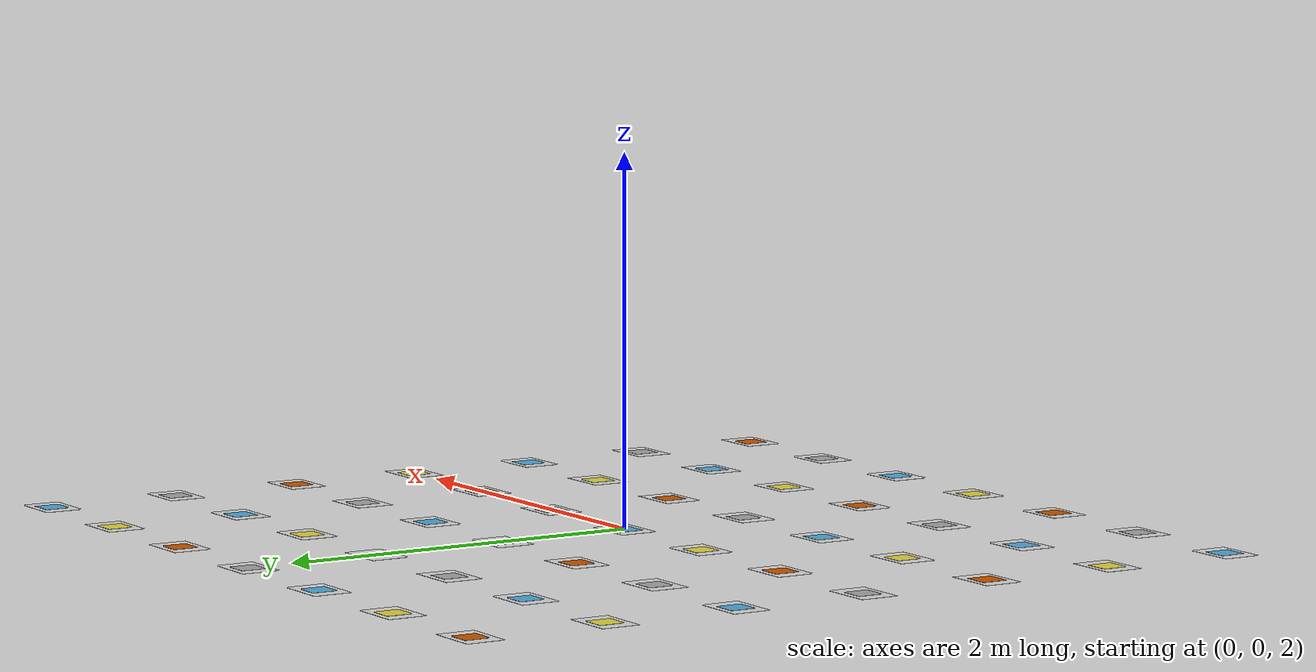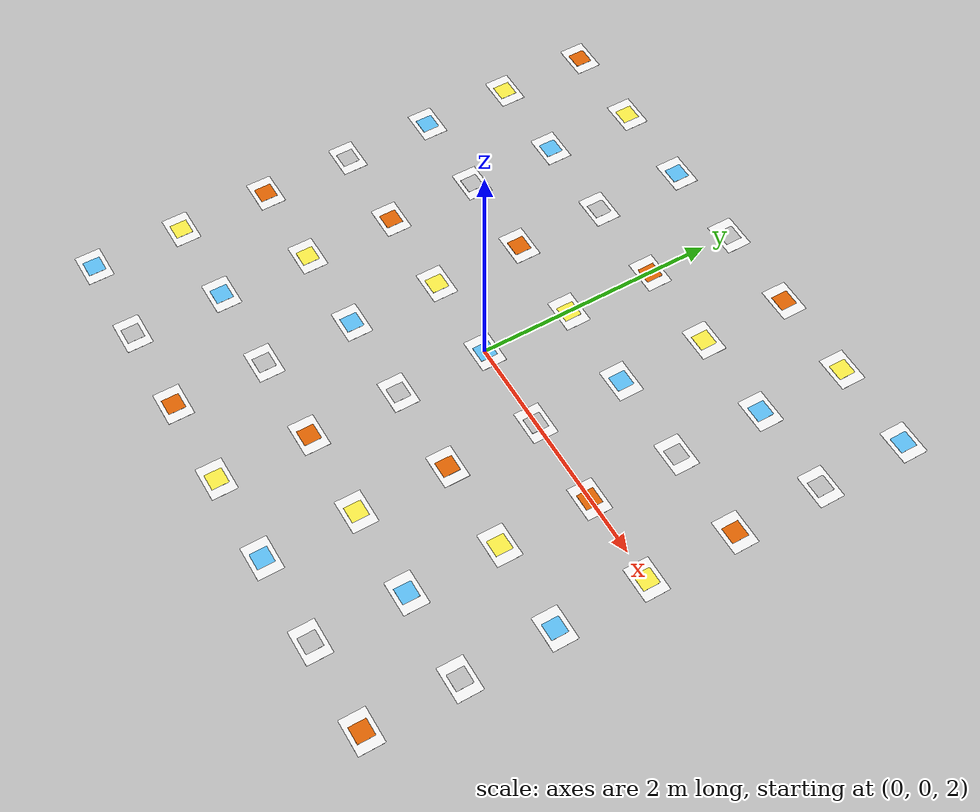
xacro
<robot xmlns:xacro="http://wiki.ros.org/xacro" name="aruco_marker">

    <xacro:arg name="prefix" default="aruco_marker_" />
    <xacro:arg name="grid_size" default="0.75" />
    <xacro:arg name="height" default="2.0" />

    <xacro:property name="grid_size" value="$(arg grid_size)" />
    <xacro:property name="height" value="$(arg height)" />
    <xacro:property name="offset_x" value="${-3 * grid_size}" />
    <xacro:property name="offset_y" value="${-3 * grid_size}" />

    <xacro:include filename="$(find magni_gazebo)/urdf/fiducials/aruco_marker.xacro"/>

    <link name="world"/>

    <!-- Line 0-->
    <xacro:property name="line" value="0"/>

    <xacro:aruco_marker prefix="$(arg prefix)" marker_id="0" parent="world">
        <origin xyz="${offset_x + line*grid_size} ${offset_y + 0*grid_size} ${height}" rpy="0 0 0"/>
    </xacro:aruco_marker>

    <xacro:aruco_marker prefix="$(arg prefix)" marker_id="1" parent="world">
        <origin xyz="${offset_x + line*grid_size} ${offset_y + 1*grid_size} ${height}" rpy="0 0 0"/>
    </xacro:aruco_marker>

    <xacro:aruco_marker prefix="$(arg prefix)" marker_id="2" parent="world">
        <origin xyz="${offset_x + line*grid_size} ${offset_y + 2*grid_size} ${height}" rpy="0 0 0"/>
    </xacro:aruco_marker>

    <xacro:aruco_marker prefix="$(arg prefix)" marker_id="3" parent="world">
        <origin xyz="${offset_x + line*grid_size} ${offset_y + 3*grid_size} ${height}" rpy="0 0 0"/>
    </xacro:aruco_marker>

    <xacro:aruco_marker prefix="$(arg prefix)" marker_id="4" parent="world">
        <origin xyz="${offset_x + line*grid_size} ${offset_y + 4*grid_size} ${height}" rpy="0 0 0"/>
    </xacro:aruco_marker>

    <xacro:aruco_marker prefix="$(arg prefix)" marker_id="5" parent="world">
        <origin xyz="${offset_x + line*grid_size} ${offset_y + 5*grid_size} ${height}" rpy="0 0 0"/>
    </xacro:aruco_marker>

    <xacro:aruco_marker prefix="$(arg prefix)" marker_id="6" parent="world">
        <origin xyz="${offset_x + line*grid_size} ${offset_y + 6*grid_size} ${height}" rpy="0 0 0"/>
    </xacro:aruco_marker>

    <!-- Line 1-->
    <xacro:property name="line" value="1"/>

    <xacro:aruco_marker prefix="$(arg prefix)" marker_id="7" parent="world">
        <origin xyz="${offset_x + line*grid_size} ${offset_y + 0*grid_size} ${height}" rpy="0 0 0"/>
    </xacro:aruco_marker>

    <xacro:aruco_marker prefix="$(arg prefix)" marker_id="8" parent="world">
        <origin xyz="${offset_x + line*grid_size} ${offset_y + 1*grid_size} ${height}" rpy="0 0 0"/>
    </xacro:aruco_marker>

    <xacro:aruco_marker prefix="$(arg prefix)" marker_id="9" parent="world">
        <origin xyz="${offset_x + line*grid_size} ${offset_y + 2*grid_size} ${height}" rpy="0 0 0"/>
    </xacro:aruco_marker>

    <xacro:aruco_marker prefix="$(arg prefix)" marker_id="10" parent="world">
        <origin xyz="${offset_x + line*grid_size} ${offset_y + 3*grid_size} ${height}" rpy="0 0 0"/>
    </xacro:aruco_marker>

    <xacro:aruco_marker prefix="$(arg prefix)" marker_id="11" parent="world">
        <origin xyz="${offset_x + line*grid_size} ${offset_y + 4*grid_size} ${height}" rpy="0 0 0"/>
    </xacro:aruco_marker>

    <xacro:aruco_marker prefix="$(arg prefix)" marker_id="12" parent="world">
        <origin xyz="${offset_x + line*grid_size} ${offset_y + 5*grid_size} ${height}" rpy="0 0 0"/>
    </xacro:aruco_marker>

    <xacro:aruco_marker prefix="$(arg prefix)" marker_id="13" parent="world">
        <origin xyz="${offset_x + line*grid_size} ${offset_y + 6*grid_size} ${height}" rpy="0 0 0"/>
    </xacro:aruco_marker>

    <!-- Line 2-->
    <xacro:property name="line" value="2"/>

    <xacro:aruco_marker prefix="$(arg prefix)" marker_id="14" parent="world">
        <origin xyz="${offset_x + line*grid_size} ${offset_y + 0*grid_size} ${height}" rpy="0 0 0"/>
    </xacro:aruco_marker>

    <xacro:aruco_marker prefix="$(arg prefix)" marker_id="15" parent="world">
        <origin xyz="${offset_x + line*grid_size} ${offset_y + 1*grid_size} ${height}" rpy="0 0 0"/>
    </xacro:aruco_marker>

    <xacro:aruco_marker prefix="$(arg prefix)" marker_id="16" parent="world">
        <origin xyz="${offset_x + line*grid_size} ${offset_y + 2*grid_size} ${height}" rpy="0 0 0"/>
    </xacro:aruco_marker>

    <xacro:aruco_marker prefix="$(arg prefix)" marker_id="17" parent="world">
        <origin xyz="${offset_x + line*grid_size} ${offset_y + 3*grid_size} ${height}" rpy="0 0 0"/>
    </xacro:aruco_marker>

    <xacro:aruco_marker prefix="$(arg prefix)" marker_id="18" parent="world">
        <origin xyz="${offset_x + line*grid_size} ${offset_y + 4*grid_size} ${height}" rpy="0 0 0"/>
    </xacro:aruco_marker>

    <xacro:aruco_marker prefix="$(arg prefix)" marker_id="19" parent="world">
        <origin xyz="${offset_x + line*grid_size} ${offset_y + 5*grid_size} ${height}" rpy="0 0 0"/>
    </xacro:aruco_marker>

    <xacro:aruco_marker prefix="$(arg prefix)" marker_id="20" parent="world">
        <origin xyz="${offset_x + line*grid_size} ${offset_y + 6*grid_size} ${height}" rpy="0 0 0"/>
    </xacro:aruco_marker>

    <!-- Line 3-->
    <xacro:property name="line" value="3"/>

    <xacro:aruco_marker prefix="$(arg prefix)" marker_id="21" parent="world">
        <origin xyz="${offset_x + line*grid_size} ${offset_y + 0*grid_size} ${height}" rpy="0 0 0"/>
    </xacro:aruco_marker>

    <xacro:aruco_marker prefix="$(arg prefix)" marker_id="22" parent="world">
        <origin xyz="${offset_x + line*grid_size} ${offset_y + 1*grid_size} ${height}" rpy="0 0 0"/>
    </xacro:aruco_marker>

    <xacro:aruco_marker prefix="$(arg prefix)" marker_id="23" parent="world">
        <origin xyz="${offset_x + line*grid_size} ${offset_y + 2*grid_size} ${height}" rpy="0 0 0"/>
    </xacro:aruco_marker>

    <xacro:aruco_marker prefix="$(arg prefix)" marker_id="24" parent="world">
        <origin xyz="${offset_x + line*grid_size} ${offset_y + 3*grid_size} ${height}" rpy="0 0 0"/>
    </xacro:aruco_marker>

    <xacro:aruco_marker prefix="$(arg prefix)" marker_id="25" parent="world">
        <origin xyz="${offset_x + line*grid_size} ${offset_y + 4*grid_size} ${height}" rpy="0 0 0"/>
    </xacro:aruco_marker>

    <xacro:aruco_marker prefix="$(arg prefix)" marker_id="26" parent="world">
        <origin xyz="${offset_x + line*grid_size} ${offset_y + 5*grid_size} ${height}" rpy="0 0 0"/>
    </xacro:aruco_marker>

    <xacro:aruco_marker prefix="$(arg prefix)" marker_id="27" parent="world">
        <origin xyz="${offset_x + line*grid_size} ${offset_y + 6*grid_size} ${height}" rpy="0 0 0"/>
    </xacro:aruco_marker>

    <!-- Line 4-->
    <xacro:property name="line" value="4"/>

    <xacro:aruco_marker prefix="$(arg prefix)" marker_id="28" parent="world">
        <origin xyz="${offset_x + line*grid_size} ${offset_y + 0*grid_size} ${height}" rpy="0 0 0"/>
    </xacro:aruco_marker>

    <xacro:aruco_marker prefix="$(arg prefix)" marker_id="29" parent="world">
        <origin xyz="${offset_x + line*grid_size} ${offset_y + 1*grid_size} ${height}" rpy="0 0 0"/>
    </xacro:aruco_marker>

    <xacro:aruco_marker prefix="$(arg prefix)" marker_id="30" parent="world">
        <origin xyz="${offset_x + line*grid_size} ${offset_y + 2*grid_size} ${height}" rpy="0 0 0"/>
    </xacro:aruco_marker>

    <xacro:aruco_marker prefix="$(arg prefix)" marker_id="31" parent="world">
        <origin xyz="${offset_x + line*grid_size} ${offset_y + 3*grid_size} ${height}" rpy="0 0 0"/>
    </xacro:aruco_marker>

    <xacro:aruco_marker prefix="$(arg prefix)" marker_id="32" parent="world">
        <origin xyz="${offset_x + line*grid_size} ${offset_y + 4*grid_size} ${height}" rpy="0 0 0"/>
    </xacro:aruco_marker>

    <xacro:aruco_marker prefix="$(arg prefix)" marker_id="33" parent="world">
        <origin xyz="${offset_x + line*grid_size} ${offset_y + 5*grid_size} ${height}" rpy="0 0 0"/>
    </xacro:aruco_marker>

    <xacro:aruco_marker prefix="$(arg prefix)" marker_id="34" parent="world">
        <origin xyz="${offset_x + line*grid_size} ${offset_y + 6*grid_size} ${height}" rpy="0 0 0"/>
    </xacro:aruco_marker>

    <!-- Line 5-->
    <xacro:property name="line" value="5"/>

    <xacro:aruco_marker prefix="$(arg prefix)" marker_id="35" parent="world">
        <origin xyz="${offset_x + line*grid_size} ${offset_y + 0*grid_size} ${height}" rpy="0 0 0"/>
    </xacro:aruco_marker>

    <xacro:aruco_marker prefix="$(arg prefix)" marker_id="36" parent="world">
        <origin xyz="${offset_x + line*grid_size} ${offset_y + 1*grid_size} ${height}" rpy="0 0 0"/>
    </xacro:aruco_marker>

    <xacro:aruco_marker prefix="$(arg prefix)" marker_id="37" parent="world">
        <origin xyz="${offset_x + line*grid_size} ${offset_y + 2*grid_size} ${height}" rpy="0 0 0"/>
    </xacro:aruco_marker>

    <xacro:aruco_marker prefix="$(arg prefix)" marker_id="38" parent="world">
        <origin xyz="${offset_x + line*grid_size} ${offset_y + 3*grid_size} ${height}" rpy="0 0 0"/>
    </xacro:aruco_marker>

    <xacro:aruco_marker prefix="$(arg prefix)" marker_id="39" parent="world">
        <origin xyz="${offset_x + line*grid_size} ${offset_y + 4*grid_size} ${height}" rpy="0 0 0"/>
    </xacro:aruco_marker>

    <xacro:aruco_marker prefix="$(arg prefix)" marker_id="40" parent="world">
        <origin xyz="${offset_x + line*grid_size} ${offset_y + 5*grid_size} ${height}" rpy="0 0 0"/>
    </xacro:aruco_marker>

    <xacro:aruco_marker prefix="$(arg prefix)" marker_id="41" parent="world">
        <origin xyz="${offset_x + line*grid_size} ${offset_y + 6*grid_size} ${height}" rpy="0 0 0"/>
    </xacro:aruco_marker>

    <!-- Line 6-->
    <xacro:property name="line" value="6"/>

    <xacro:aruco_marker prefix="$(arg prefix)" marker_id="42" parent="world">
        <origin xyz="${offset_x + line*grid_size} ${offset_y + 0*grid_size} ${height}" rpy="0 0 0"/>
    </xacro:aruco_marker>

    <xacro:aruco_marker prefix="$(arg prefix)" marker_id="43" parent="world">
        <origin xyz="${offset_x + line*grid_size} ${offset_y + 1*grid_size} ${height}" rpy="0 0 0"/>
    </xacro:aruco_marker>

    <xacro:aruco_marker prefix="$(arg prefix)" marker_id="44" parent="world">
        <origin xyz="${offset_x + line*grid_size} ${offset_y + 2*grid_size} ${height}" rpy="0 0 0"/>
    </xacro:aruco_marker>

    <xacro:aruco_marker prefix="$(arg prefix)" marker_id="45" parent="world">
        <origin xyz="${offset_x + line*grid_size} ${offset_y + 3*grid_size} ${height}" rpy="0 0 0"/>
    </xacro:aruco_marker>

    <xacro:aruco_marker prefix="$(arg prefix)" marker_id="46" parent="world">
        <origin xyz="${offset_x + line*grid_size} ${offset_y + 4*grid_size} ${height}" rpy="0 0 0"/>
    </xacro:aruco_marker>

    <xacro:aruco_marker prefix="$(arg prefix)" marker_id="47" parent="world">
        <origin xyz="${offset_x + line*grid_size} ${offset_y + 5*grid_size} ${height}" rpy="0 0 0"/>
    </xacro:aruco_marker>

    <xacro:aruco_marker prefix="$(arg prefix)" marker_id="48" parent="world">
        <origin xyz="${offset_x + line*grid_size} ${offset_y + 6*grid_size} ${height}" rpy="0 0 0"/>
    </xacro:aruco_marker>

</robot>

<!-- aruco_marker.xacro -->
<robot xmlns:xacro="http://wiki.ros.org/xacro" name="aruco_marker">

    <xacro:macro name="aruco_marker" params="prefix marker_id parent='' *origin">

        <xacro:if value="${parent != ''}">
            <joint name="${prefix}${marker_id}_joint" type="fixed">
                <parent link="world"/>
                <child link="${prefix}${marker_id}base_link"/>
                <xacro:insert_block name="origin"/>
            </joint>
        </xacro:if>

        <link name="${prefix}${marker_id}base_link">
            <inertial>
                <mass value="0.01"/>
                <inertia ixx="0.0" ixy="0.0" ixz="0.0" iyy="0.0" iyz="0.0" izz="0.0"/>
            </inertial>
            <visual>
                <geometry>
                    <box size="0.14 0.14 0.003"/>
                </geometry>
            </visual>
        </link>

        <gazebo reference="${prefix}${marker_id}base_link">
            <material>ArucoVisualMarker${marker_id}/Marker</material>
            <turnGravityOff>true</turnGravityOff>
        </gazebo>

        <joint name="${prefix}${marker_id}paper_joint" type="fixed">
            <parent link="${prefix}${marker_id}base_link"/>
            <child link="${prefix}${marker_id}paper_link"/>
        </joint>

        <link name="${prefix}${marker_id}paper_link">
            <visual>
                <geometry>
                    <box size="0.297 0.21 0.001"/>
                </geometry>
            </visual>
        </link>

        <gazebo reference="${prefix}${marker_id}paper_link">
            <material>MagniWorld/White</material>
        </gazebo>

    </xacro:macro>

</robot>
